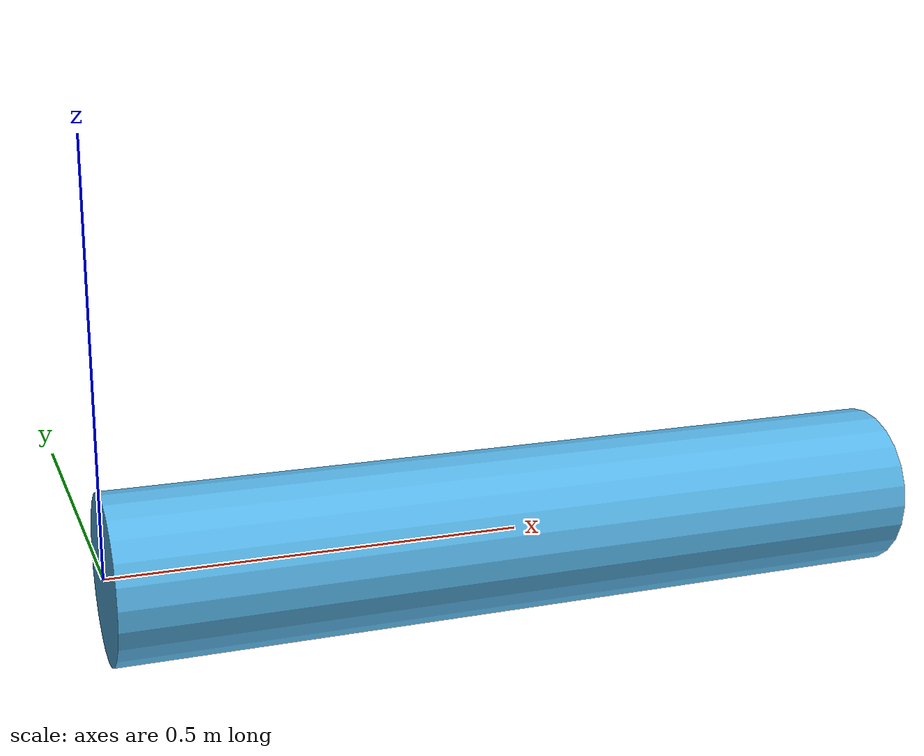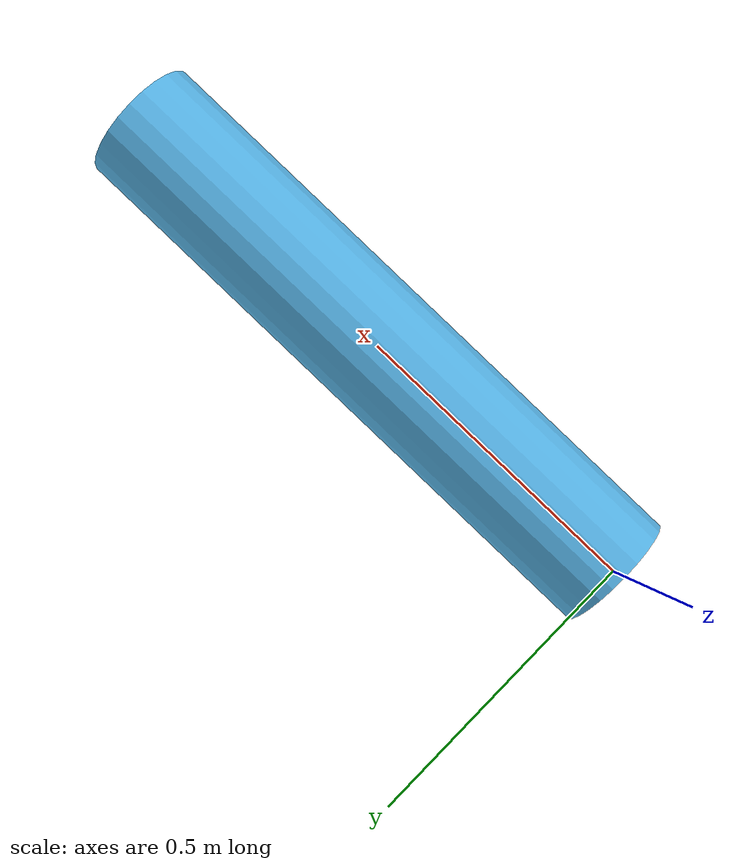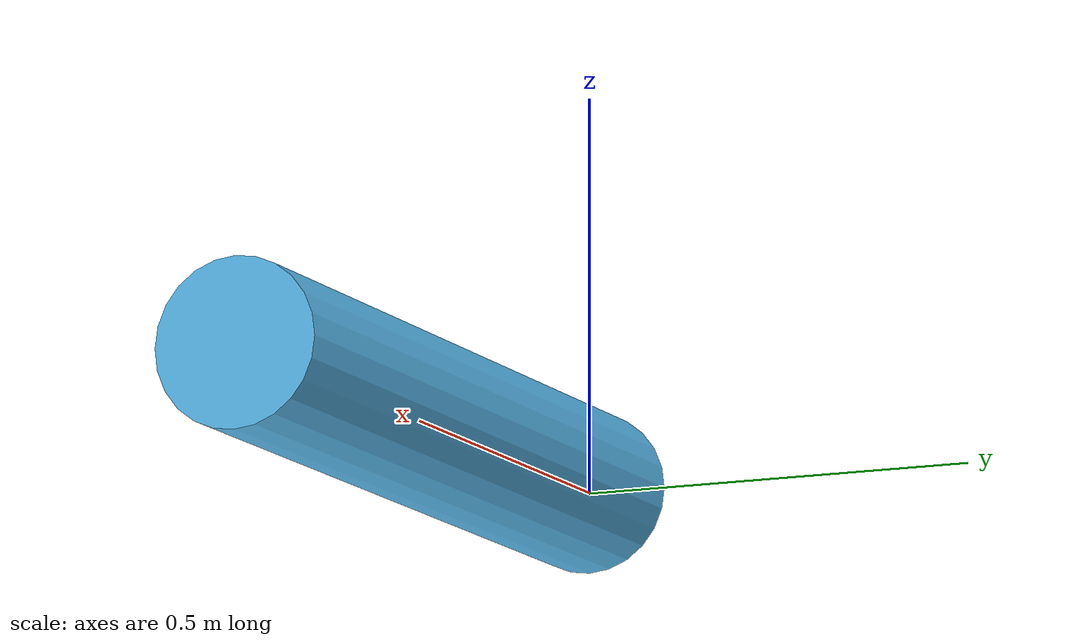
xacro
<?xml version="1.0"?>
<robot xmlns:xacro="http://www.ros.org/wiki/xacro" name="simp">

<xacro:property name="length" value="1.0" />
<xacro:property name="radius" value="0.1" />
<xacro:property name="mass" value="10" />

<xacro:macro name="default_shape">
	<geometry>
	     <cylinder length="${length}" radius="${radius}"/>
	</geometry>
</xacro:macro>

<xacro:macro name="default_inertia">
	  <inertial>
		<mass value="10" />
                <inertia ixx="1.0" ixy="0.0" ixz="0.0"
                     iyy="1.0" iyz="0.0"
                     izz="1.0" />
	  </inertial>
</xacro:macro>

<link name="base_link"/>

 <link name = "link_0">
         <visual>
		<origin rpy="0 1.57 0" xyz="0.5 0 0" />
		<xacro:default_shape />
	  </visual>
	  <collision>
		<xacro:default_shape />
	  </collision>
	  <xacro:default_inertia/>
</link>

<joint name="b0" type="revolute">
       <parent link="base_link"/>
       <child link="link_0"/>
       <axis xyz="0 0 1"/>
       <limit effort="30.0" lower="0.0" upper="3.14" velocity="0.5"/>
       <dynamics damping="0.01" friction="0.01"/>
       <origin rpy="0 0 0" xyz="0 0 0"/>
</joint>

<transmission name="base_to_0_trans">
    <type>transmission_interface/SimpleTransmission</type>
    <actuator name="base_to_0_motor">
      <mechanicalReduction>1</mechanicalReduction>
    </actuator>
    <joint name="b0">
      <hardwareInterface>hardware_interface/PositionJointInterface</hardwareInterface>
    </joint>
  </transmission>

<gazebo>
    <plugin name="gazebo_ros_control" filename="libgazebo_ros_control.so">
      <robotNamespace>/</robotNamespace>
    </plugin>
</gazebo>

</robot>
